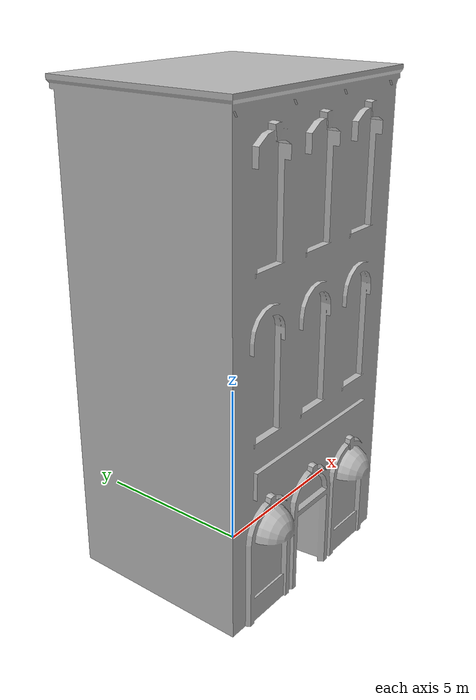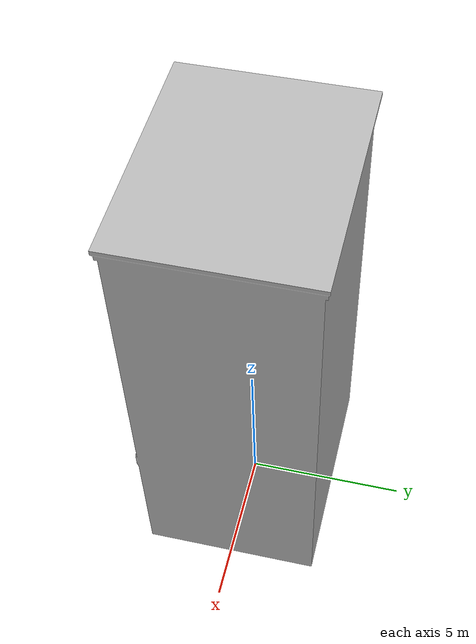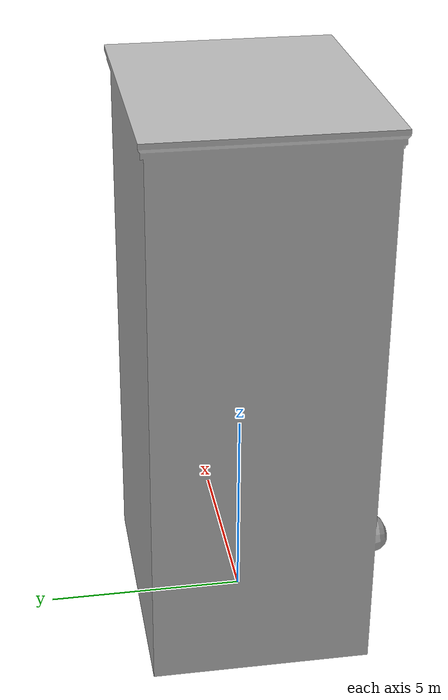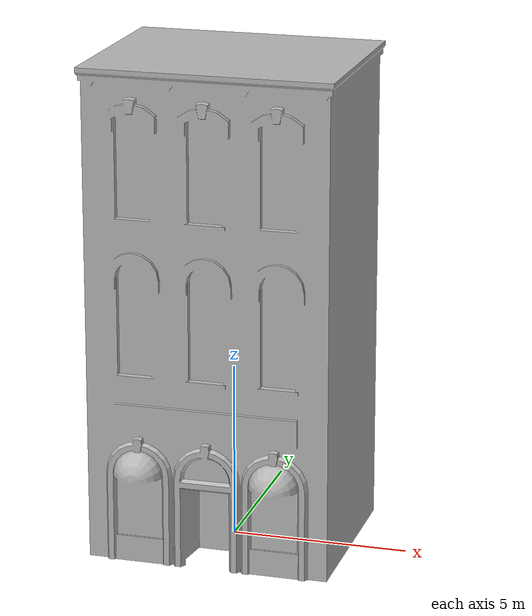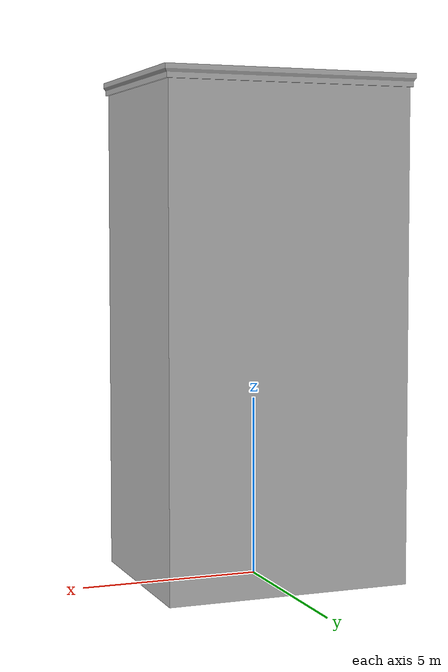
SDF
<?xml version="1.0" ?>
<sdf version="1.6">
  <model name="law_office">
    <static>true</static>
    <link name="link">
      <collision name="collision">
        <pose>0 0 6.962436368 0 0 0</pose>
        <geometry>
          <box>
            <size>6.844012958 5.431646878 13.924872736</size>
          </box>
        </geometry>
      </collision>
      <visual name="visual">
        <geometry>
          <mesh>
            <uri>model://law_office/meshes/law_office.dae</uri>
          </mesh>
        </geometry>
      </visual>
    </link>
  </model>
</sdf>
